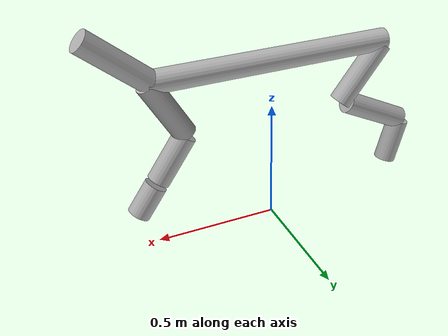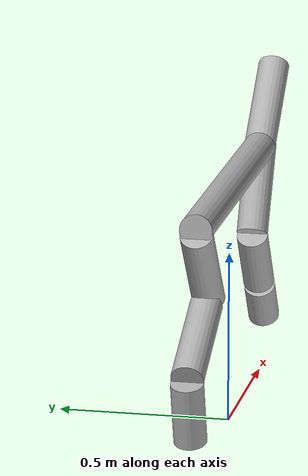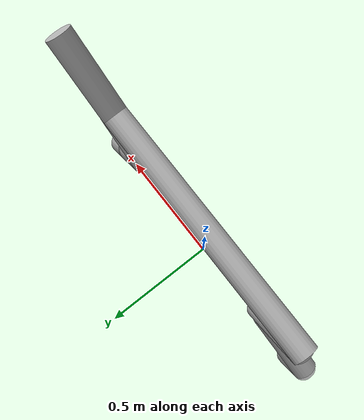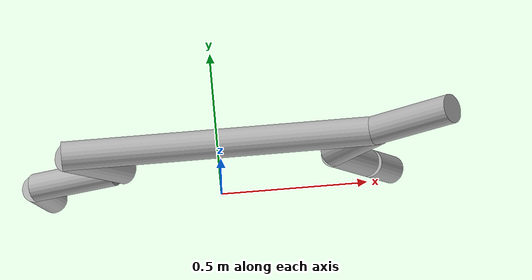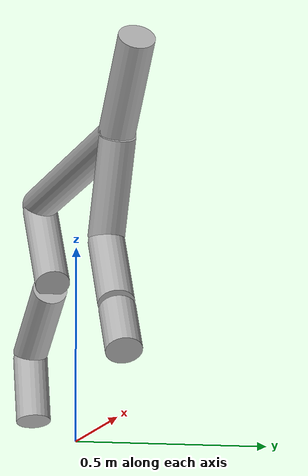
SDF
<?xml version="1.0"?>
<sdf version='1.11'>
  <model name='half_cheetah'>
    <link name='link1_1'>
      <inertial>
        <pose>0 0 0 0 0 0</pose>
        <mass>1.9999999999999999e-06</mass>
        <inertia>
          <ixx>2.0000000000000001e-09</ixx>
          <ixy>0</ixy>
          <ixz>0</ixz>
          <iyy>2.0000000000000001e-09</iyy>
          <iyz>0</iyz>
          <izz>2.0000000000000001e-09</izz>
        </inertia>
      </inertial>
    </link>
    <joint name='rootx' type='prismatic'>
      <pose relative_to='link1_1'>0 0 0.69999999999999996 0 0 0</pose>
      <parent>link1_1</parent>
      <child>link1_2</child>
      <axis>
        <xyz>1 0 0</xyz>
        <limit>
          <lower>0</lower>
          <upper>1</upper>
          <effort>0</effort>
          <velocity>0</velocity>
        </limit>
        <dynamics>
          <damping>1</damping>
          <friction>0.0001</friction>
          <spring_reference>0</spring_reference>
          <spring_stiffness>0</spring_stiffness>
        </dynamics>
      </axis>
    </joint>
    <link name='link1_2'>
      <pose relative_to='rootx'>0 0 0 0 0 0</pose>
      <inertial>
        <pose>0 0 0 0 0 0</pose>
        <mass>9.9999999999999995e-07</mass>
        <inertia>
          <ixx>1.0000000000000001e-09</ixx>
          <ixy>0</ixy>
          <ixz>0</ixz>
          <iyy>1.0000000000000001e-09</iyy>
          <iyz>0</iyz>
          <izz>1.0000000000000001e-09</izz>
        </inertia>
      </inertial>
    </link>
    <joint name='rootz' type='prismatic'>
      <pose relative_to='link1_2'>0 0 0 0 0 0</pose>
      <parent>link1_2</parent>
      <child>link1_3</child>
      <axis>
        <xyz>0 0 1</xyz>
        <limit>
          <lower>0</lower>
          <upper>1</upper>
          <effort>0</effort>
          <velocity>0</velocity>
        </limit>
        <dynamics>
          <damping>1</damping>
          <friction>0.0001</friction>
          <spring_reference>0</spring_reference>
          <spring_stiffness>0</spring_stiffness>
        </dynamics>
      </axis>
    </joint>
    <link name='link1_3'>
      <pose relative_to='rootz'>0 0 0 0 0 0</pose>
      <inertial>
        <pose>0 0 0 0 0 0</pose>
        <mass>9.9999999999999995e-07</mass>
        <inertia>
          <ixx>1.0000000000000001e-09</ixx>
          <ixy>0</ixy>
          <ixz>0</ixz>
          <iyy>1.0000000000000001e-09</iyy>
          <iyz>0</iyz>
          <izz>1.0000000000000001e-09</izz>
        </inertia>
      </inertial>
    </link>
    <joint name='rooty' type='revolute'>
      <pose relative_to='link1_3'>0 0 0 0 0 0</pose>
      <parent>link1_3</parent>
      <child>link1_4</child>
      <axis>
        <xyz>0 1 0</xyz>
        <limit>
          <lower>-inf</lower>
          <upper>inf</upper>
        </limit>
        <dynamics>
          <damping>1</damping>
          <friction>0.0001</friction>
          <spring_reference>0</spring_reference>
          <spring_stiffness>0</spring_stiffness>
        </dynamics>
      </axis>
    </joint>
    <link name='link1_4'>
      <pose relative_to='rooty'>0 0 0 0 0 0</pose>
      <inertial>
        <pose>0 0 0 0 0 0</pose>
        <mass>9.4573309999999999</mass>
        <inertia>
          <ixx>0.088940001000000005</ixx>
          <ixy>0</ixy>
          <ixz>0</ixz>
          <iyy>1.466880001</iyy>
          <iyz>0</iyz>
          <izz>1.3912800009999999</izz>
        </inertia>
      </inertial>
      <collision name='link1_4_fixed_joint_lump__torso_collision'>
        <pose>0 0 0 0 1.5707963267948966 0</pose>
        <geometry>
          <cylinder>
            <length>1</length>
            <radius>0.045999999999999999</radius>
          </cylinder>
        </geometry>
      </collision>
      <visual name='link1_4_fixed_joint_lump__torso_visual'>
        <pose>0 0 0 0 1.5707963267948966 0</pose>
        <geometry>
          <cylinder>
            <length>1</length>
            <radius>0.045999999999999999</radius>
          </cylinder>
        </geometry>
              <material>
          <ambient>0.5 0.5 0.5 1</ambient>
          <diffuse>0.7 0.7 0.7 1</diffuse>
          <specular>0.1 0.1 0.1 1</specular>
        </material>
      </visual>
      <collision name='link1_4_fixed_joint_lump__torso_collision_1'>
        <pose>0.59999999999999998 0 0.10000000000000001 0 0.87 0</pose>
        <geometry>
          <cylinder>
            <length>0.29999999999999999</length>
            <radius>0.045999999999999999</radius>
          </cylinder>
        </geometry>
      </collision>
      <visual name='link1_4_fixed_joint_lump__torso_1_visual'>
        <pose>0.59999999999999998 0 0.10000000000000001 0 0.87 0</pose>
        <geometry>
          <cylinder>
            <length>0.29999999999999999</length>
            <radius>0.045999999999999999</radius>
          </cylinder>
        </geometry>
              <material>
          <ambient>0.5 0.5 0.5 1</ambient>
          <diffuse>0.7 0.7 0.7 1</diffuse>
          <specular>0.1 0.1 0.1 1</specular>
        </material>
      </visual>
    </link>
    <joint name='bthigh' type='revolute'>
      <pose relative_to='link1_4'>-0.5 0 0 0 0 0</pose>
      <parent>link1_4</parent>
      <child>link1_6</child>
      <axis>
        <xyz>0 1 0</xyz>
        <limit>
          <lower>-0.52000000000000002</lower>
          <upper>1.05</upper>
          <effort>0</effort>
          <velocity>0</velocity>
        </limit>
        <dynamics>
          <damping>1</damping>
          <friction>0.0001</friction>
          <spring_reference>0</spring_reference>
          <spring_stiffness>0</spring_stiffness>
        </dynamics>
      </axis>
    </joint>
    <link name='link1_6'>
      <pose relative_to='bthigh'>0 0 0 0 0 0</pose>
      <inertial>
        <pose>0 0 0 0 0 0</pose>
        <mass>2.335531</mass>
        <inertia>
          <ixx>0.026650001</ixx>
          <ixy>0</ixy>
          <ixz>0</ixz>
          <iyy>0.043290001000000002</iyy>
          <iyz>0</iyz>
          <izz>0.019930000999999999</izz>
        </inertia>
      </inertial>
      <collision name='link1_6_fixed_joint_lump__bthigh_collision'>
        <pose>0.10000000000000001 0 -0.13 3.1415899999999999 0.65841000000000005 3.1415899999999999</pose>
        <geometry>
          <cylinder>
            <length>0.28999999999999998</length>
            <radius>0.045999999999999999</radius>
          </cylinder>
        </geometry>
      </collision>
      <visual name='link1_6_fixed_joint_lump__bthigh_visual'>
        <pose>0.10000000000000001 0 -0.13 3.1415899999999999 0.65841000000000005 3.1415899999999999</pose>
        <geometry>
          <cylinder>
            <length>0.28999999999999998</length>
            <radius>0.045999999999999999</radius>
          </cylinder>
        </geometry>
              <material>
          <ambient>0.5 0.5 0.5 1</ambient>
          <diffuse>0.7 0.7 0.7 1</diffuse>
          <specular>0.1 0.1 0.1 1</specular>
        </material>
      </visual>
    </link>
    <joint name='bshin' type='revolute'>
      <pose relative_to='link1_6'>0.16 0 -0.25 0 0 0</pose>
      <parent>link1_6</parent>
      <child>link1_8</child>
      <axis>
        <xyz>0 1 0</xyz>
        <limit>
          <lower>-0.78500000000000003</lower>
          <upper>0.78500000000000003</upper>
          <effort>0</effort>
          <velocity>0</velocity>
        </limit>
        <dynamics>
          <damping>1</damping>
          <friction>0.0001</friction>
          <spring_reference>0</spring_reference>
          <spring_stiffness>0</spring_stiffness>
        </dynamics>
      </axis>
    </joint>
    <link name='link1_8'>
      <pose relative_to='bshin'>0 0 0 0 0 0</pose>
      <inertial>
        <pose>0 0 0 0 0 0</pose>
        <mass>2.4020009999999998</mass>
        <inertia>
          <ixx>0.014830001000000001</ixx>
          <ixy>0</ixy>
          <ixz>0</ixz>
          <iyy>0.043930001000000003</iyy>
          <iyz>0</iyz>
          <izz>0.032480001000000001</izz>
        </inertia>
      </inertial>
      <collision name='link1_8_fixed_joint_lump__bshin_collision'>
        <pose>-0.14000000000000001 0 -0.070000000000000007 3.1415899999999999 -1.1115900000000003 3.1415899999999999</pose>
        <geometry>
          <cylinder>
            <length>0.29999999999999999</length>
            <radius>0.045999999999999999</radius>
          </cylinder>
        </geometry>
      </collision>
      <visual name='link1_8_fixed_joint_lump__bshin_visual'>
        <pose>-0.14000000000000001 0 -0.070000000000000007 3.1415899999999999 -1.1115900000000003 3.1415899999999999</pose>
        <geometry>
          <cylinder>
            <length>0.29999999999999999</length>
            <radius>0.045999999999999999</radius>
          </cylinder>
        </geometry>
              <material>
          <ambient>0.5 0.5 0.5 1</ambient>
          <diffuse>0.7 0.7 0.7 1</diffuse>
          <specular>0.1 0.1 0.1 1</specular>
        </material>
      </visual>
    </link>
    <joint name='bfoot' type='revolute'>
      <pose relative_to='link1_8'>-0.28000000000000003 0 -0.14000000000000001 0 0 0</pose>
      <parent>link1_8</parent>
      <child>link1_10</child>
      <axis>
        <xyz>0 1 0</xyz>
        <limit>
          <lower>-0.40000000000000002</lower>
          <upper>0.78500000000000003</upper>
          <effort>0</effort>
          <velocity>0</velocity>
        </limit>
        <dynamics>
          <damping>1</damping>
          <friction>0.0001</friction>
          <spring_reference>0</spring_reference>
          <spring_stiffness>0</spring_stiffness>
        </dynamics>
      </axis>
    </joint>
    <link name='link1_10'>
      <pose relative_to='bfoot'>0 0 0 0 0 0</pose>
      <inertial>
        <pose>0 0 0 0 0 0</pose>
        <mass>1.6574709999999999</mass>
        <inertia>
          <ixx>0.013140001</ixx>
          <ixy>0</ixy>
          <ixz>0</ixz>
          <iyy>0.015660001</iyy>
          <iyz>0</iyz>
          <izz>0.0048500009999999996</izz>
        </inertia>
      </inertial>
      <collision name='link1_10_fixed_joint_lump__bfoot_collision'>
        <pose>0.029999999999999999 0 -0.097000000000000003 0 -0.26999999999999996 0</pose>
        <geometry>
          <cylinder>
            <length>0.188</length>
            <radius>0.045999999999999999</radius>
          </cylinder>
        </geometry>
      </collision>
      <visual name='link1_10_fixed_joint_lump__bfoot_visual'>
        <pose>0.029999999999999999 0 -0.097000000000000003 0 -0.26999999999999996 0</pose>
        <geometry>
          <cylinder>
            <length>0.188</length>
            <radius>0.045999999999999999</radius>
          </cylinder>
        </geometry>
              <material>
          <ambient>0.5 0.5 0.5 1</ambient>
          <diffuse>0.7 0.7 0.7 1</diffuse>
          <specular>0.1 0.1 0.1 1</specular>
        </material>
      </visual>
    </link>
    <joint name='fthigh' type='revolute'>
      <pose relative_to='link1_4'>0.5 0 0 0 0 0</pose>
      <parent>link1_4</parent>
      <child>link1_12</child>
      <axis>
        <xyz>0 1 0</xyz>
        <limit>
          <lower>-1</lower>
          <upper>0.69999999999999996</upper>
          <effort>0</effort>
          <velocity>0</velocity>
        </limit>
        <dynamics>
          <damping>1</damping>
          <friction>0.0001</friction>
          <spring_reference>0</spring_reference>
          <spring_stiffness>0</spring_stiffness>
        </dynamics>
      </axis>
    </joint>
    <link name='link1_12'>
      <pose relative_to='fthigh'>0 0 0 0 0 0</pose>
      <inertial>
        <pose>0 0 0 0 0 0</pose>
        <mass>2.1759810000000002</mass>
        <inertia>
          <ixx>0.024570001000000001</ixx>
          <ixy>0</ixy>
          <ixz>0</ixz>
          <iyy>0.035080001</iyy>
          <iyz>0</iyz>
          <izz>0.013580001</izz>
        </inertia>
      </inertial>
      <collision name='link1_12_fixed_joint_lump__fthigh_collision'>
        <pose>-0.070000000000000007 0 -0.12 0 0.52000000000000002 0</pose>
        <geometry>
          <cylinder>
            <length>0.26600000000000001</length>
            <radius>0.045999999999999999</radius>
          </cylinder>
        </geometry>
      </collision>
      <visual name='link1_12_fixed_joint_lump__fthigh_visual'>
        <pose>-0.070000000000000007 0 -0.12 0 0.52000000000000002 0</pose>
        <geometry>
          <cylinder>
            <length>0.26600000000000001</length>
            <radius>0.045999999999999999</radius>
          </cylinder>
        </geometry>
              <material>
          <ambient>0.5 0.5 0.5 1</ambient>
          <diffuse>0.7 0.7 0.7 1</diffuse>
          <specular>0.1 0.1 0.1 1</specular>
        </material>
      </visual>
    </link>
    <joint name='fshin' type='revolute'>
      <pose relative_to='link1_12'>-0.14000000000000001 0 -0.23999999999999999 0 0 0</pose>
      <parent>link1_12</parent>
      <child>link1_14</child>
      <axis>
        <xyz>0 1 0</xyz>
        <limit>
          <lower>-1.2</lower>
          <upper>0.87</upper>
          <effort>0</effort>
          <velocity>0</velocity>
        </limit>
        <dynamics>
          <damping>1</damping>
          <friction>0.0001</friction>
          <spring_reference>0</spring_reference>
          <spring_stiffness>0</spring_stiffness>
        </dynamics>
      </axis>
    </joint>
    <link name='link1_14'>
      <pose relative_to='fshin'>0 0 0 0 0 0</pose>
      <inertial>
        <pose>0 0 0 0 0 0</pose>
        <mass>1.8170109999999999</mass>
        <inertia>
          <ixx>0.015170001000000001</ixx>
          <ixy>0</ixy>
          <ixz>0</ixz>
          <iyy>0.023170000999999999</iyy>
          <iyz>0</iyz>
          <izz>0.010560000999999999</izz>
        </inertia>
      </inertial>
      <collision name='link1_14_fixed_joint_lump__fshin_collision'>
        <pose>0.065000000000000002 0 -0.089999999999999997 0 -0.59999999999999987 0</pose>
        <geometry>
          <cylinder>
            <length>0.21199999999999999</length>
            <radius>0.045999999999999999</radius>
          </cylinder>
        </geometry>
      </collision>
      <visual name='link1_14_fixed_joint_lump__fshin_visual'>
        <pose>0.065000000000000002 0 -0.089999999999999997 0 -0.59999999999999987 0</pose>
        <geometry>
          <cylinder>
            <length>0.21199999999999999</length>
            <radius>0.045999999999999999</radius>
          </cylinder>
        </geometry>
              <material>
          <ambient>0.5 0.5 0.5 1</ambient>
          <diffuse>0.7 0.7 0.7 1</diffuse>
          <specular>0.1 0.1 0.1 1</specular>
        </material>
      </visual>
    </link>
    <joint name='ffoot' type='revolute'>
      <pose relative_to='link1_14'>0.13 0 -0.17999999999999999 0 0 0</pose>
      <parent>link1_14</parent>
      <child>link1_16</child>
      <axis>
        <xyz>0 1 0</xyz>
        <limit>
          <lower>-0.5</lower>
          <upper>0.5</upper>
          <effort>0</effort>
          <velocity>0</velocity>
        </limit>
        <dynamics>
          <damping>1</damping>
          <friction>0.0001</friction>
          <spring_reference>0</spring_reference>
          <spring_stiffness>0</spring_stiffness>
        </dynamics>
      </axis>
    </joint>
    <link name='link1_16'>
      <pose relative_to='ffoot'>0 0 0 0 0 0</pose>
      <inertial>
        <pose>0 0 0 0 0 0</pose>
        <mass>1.3383910000000001</mass>
        <inertia>
          <ixx>0.0075500010000000006</ixx>
          <ixy>0</ixy>
          <ixz>0</ixz>
          <iyy>0.011380001000000001</iyy>
          <iyz>0</iyz>
          <izz>0.0057200010000000006</izz>
        </inertia>
      </inertial>
      <collision name='link1_16_fixed_joint_lump__ffoot_collision'>
        <pose>0.044999999999999998 0 -0.070000000000000007 0 -0.59999999999999987 0</pose>
        <geometry>
          <cylinder>
            <length>0.14000000000000001</length>
            <radius>0.045999999999999999</radius>
          </cylinder>
        </geometry>
      </collision>
      <visual name='link1_16_fixed_joint_lump__ffoot_visual'>
        <pose>0.044999999999999998 0 -0.070000000000000007 0 -0.59999999999999987 0</pose>
        <geometry>
          <cylinder>
            <length>0.14000000000000001</length>
            <radius>0.045999999999999999</radius>
          </cylinder>
        </geometry>
              <material>
          <ambient>0.5 0.5 0.5 1</ambient>
          <diffuse>0.7 0.7 0.7 1</diffuse>
          <specular>0.1 0.1 0.1 1</specular>
        </material>
      </visual>
    </link>

</model>
</sdf>
